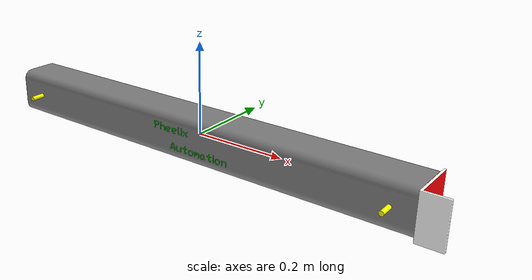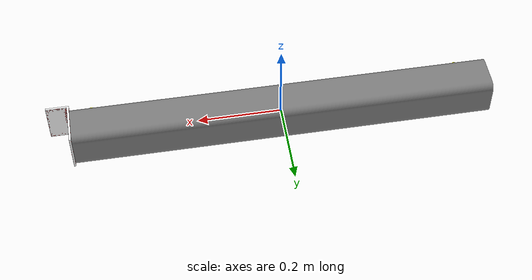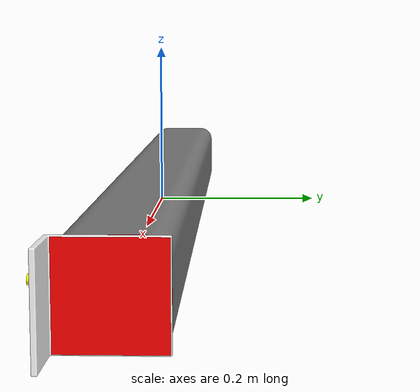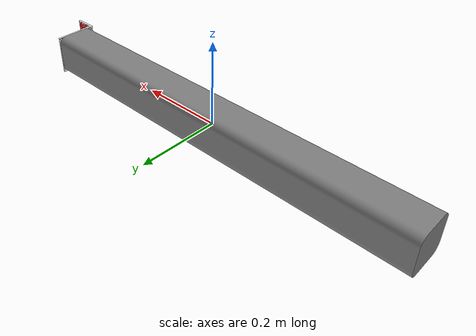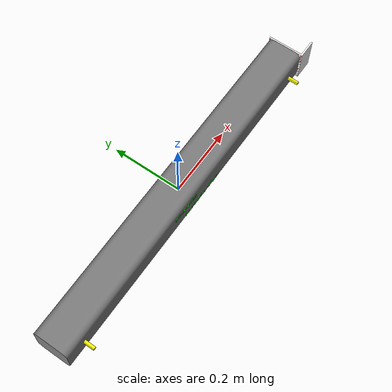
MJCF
<mujoco>
    <compiler meshdir="../meshes" />

    <asset>
        <mesh name="cylinder" file="cylinder.STL" scale="0.001 0.001 0.001" />
        <mesh name="cylinder_name"  file="cylinder_name.STL" scale="0.001 0.001 0.001" />
        <mesh name="cylinder_collision" file="cylinder_collision.STL" scale="0.001 0.001 0.001" />
        <mesh name="piston"  file="piston.STL" scale="0.001 0.001 0.001" />
        <mesh name="piston_collision" file="piston_collision.STL" scale="0.001 0.001 0.001" />
    </asset>

    <worldbody>
        <body name="pneumatic_cylinder">
            <body name="cylinder">
                <geom type="mesh" mesh="cylinder"  contype="0" conaffinity="0" />
                <geom type="mesh" mesh="cylinder_name" rgba="0 1 0 1" />
                <geom type="mesh" mesh="cylinder_collision" rgba="1 0 0 1" />

                <body name="cylinder_sensor_retracted" pos="-0.45 -0.05 0" >
                    <geom type="cylinder" size="0.005 0.03" euler="90 0 0" rgba="1 1 0 1" contype="0" conaffinity="0" />
                </body>

                <body name="cylinder_sensor_extended" pos="0.45 -0.05 0" >
                    <geom type="cylinder" size="0.005 0.03" euler="90 0 0" rgba="1 1 0 1" contype="0" conaffinity="0" />
                </body>
            </body>

            <body name="piston_body">
                <geom type="mesh" mesh="piston" rgba="1 1 1 1"  contype="0" conaffinity="0" mass="0.1" />
                <joint name="piston_joint" type="slide" axis="1 0 0" range="0 1" damping="0.005" />
                <geom type="mesh" mesh="piston_collision" rgba="1 0 0 1" mass="0" />
            </body>
        </body>
    </worldbody>

    <actuator>
        <velocity name="pneumatic_mot" joint="piston_joint" ctrlrange="-2 2" />
    </actuator>

    <sensor>
        <normal name="pneumatic_retract" body1="cylinder_sensor_retracted" body2="piston_body"  />
        <normal name="pneumatic_extend" body1="cylinder_sensor_extended" body2="piston_body"  />
    </sensor>

</mujoco>
